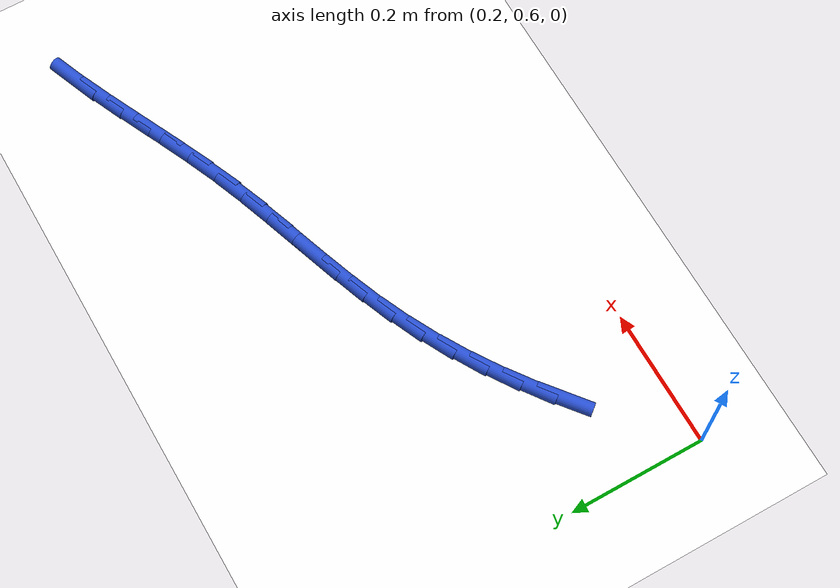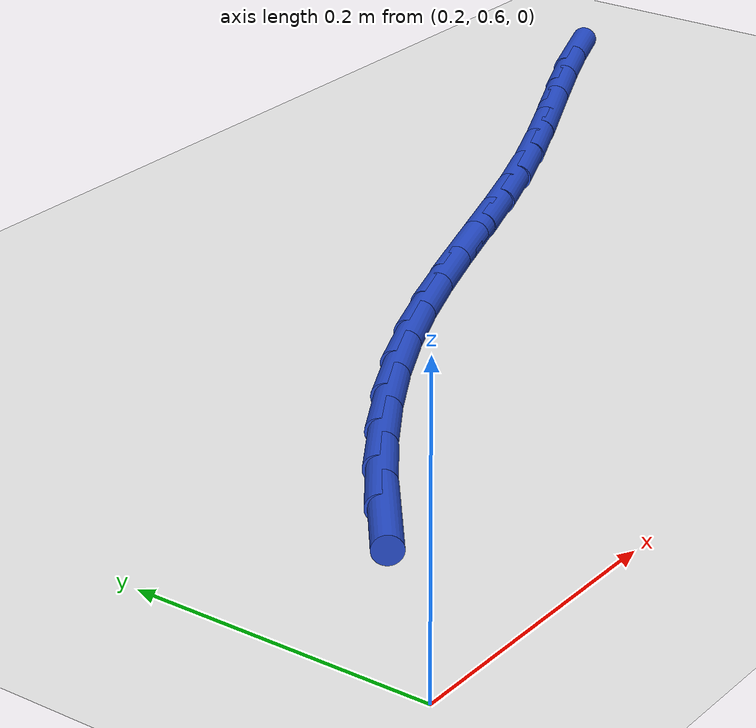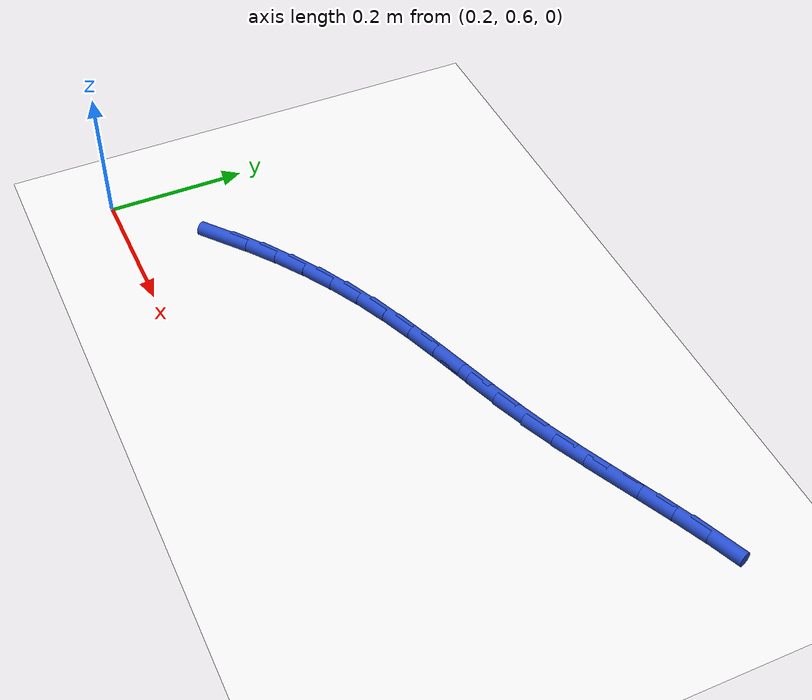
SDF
<sdf version="1.6">
 <world name="default">
  <model name="ground_plane">
   <static>1</static>
   <link name="link">
    <collision name="collision">
     <geometry><plane><normal>0 0 1</normal><size>100 100</size></plane></geometry>
     <surface><friction><ode><mu>100</mu><mu2>50</mu2></ode></friction></surface>
    </collision>
    <visual name="visual">
     <cast_shadows>0</cast_shadows>
     <geometry><plane><normal>0 0 1</normal><size>100 100</size></plane></geometry>
     <material>
      <script><uri>file://media/materials/scripts/gazebo.material</uri><name>Gazebo/WhiteGlow</name></script>
     </material>
    </visual>
   </link>
  </model>
  <model name="line">
   <link name="link_17">
    <pose>0.33464832039787706 0.7286169384509293 0.01 0 1.57 0.6748906751996312</pose>
    <collision name="collision">
     <geometry><cylinder><radius>0.01</radius><length>0.08</length></cylinder></geometry>
    </collision>
    <visual name="visual">
     <material>
      <script><name>Gazebo/Blue</name><uri>file://media/materials/scripts/gazebo.material</uri></script>
     </material>
     <geometry><cylinder><radius>0.01</radius><length>0.08</length></cylinder></geometry>
    </visual>
   </link>
   <link name="link_18">
    <pose>0.37295390740043777 0.7592708155795912 0.01 0 1.57 0.6245426824054108</pose>
    <collision name="collision">
     <geometry><cylinder><radius>0.01</radius><length>0.08</length></cylinder></geometry>
    </collision>
    <visual name="visual">
     <material>
      <script><name>Gazebo/Blue</name><uri>file://media/materials/scripts/gazebo.material</uri></script>
     </material>
     <geometry><cylinder><radius>0.01</radius><length>0.08</length></cylinder></geometry>
    </visual>
   </link>
   <link name="link_19">
    <pose>0.4126214153891729 0.7878627309232674 0.01 0 1.57 0.5735935279778767</pose>
    <collision name="collision">
     <geometry><cylinder><radius>0.01</radius><length>0.08</length></cylinder></geometry>
    </collision>
    <visual name="visual">
     <material>
      <script><name>Gazebo/Blue</name><uri>file://media/materials/scripts/gazebo.material</uri></script>
     </material>
     <geometry><cylinder><radius>0.01</radius><length>0.08</length></cylinder></geometry>
    </visual>
   </link>
   <link name="link_20">
    <pose>0.4535173822781913 0.814283577437654 0.01 0 1.57 0.5217602982170383</pose>
    <collision name="collision">
     <geometry><cylinder><radius>0.01</radius><length>0.08</length></cylinder></geometry>
    </collision>
    <visual name="visual">
     <material>
      <script><name>Gazebo/Blue</name><uri>file://media/materials/scripts/gazebo.material</uri></script>
     </material>
     <geometry><cylinder><radius>0.01</radius><length>0.08</length></cylinder></geometry>
    </visual>
   </link>
   <link name="link_21">
    <pose>0.49550834598160154 0.8384242480784464 0.01 0 1.57 0.4687589846407496</pose>
    <collision name="collision">
     <geometry><cylinder><radius>0.01</radius><length>0.08</length></cylinder></geometry>
    </collision>
    <visual name="visual">
     <material>
      <script><name>Gazebo/Blue</name><uri>file://media/materials/scripts/gazebo.material</uri></script>
     </material>
     <geometry><cylinder><radius>0.01</radius><length>0.08</length></cylinder></geometry>
    </visual>
   </link>
   <link name="link_22">
    <pose>0.5384608444135123 0.8601756358013407 0.01 0 1.57 0.4153699854165763</pose>
    <collision name="collision">
     <geometry><cylinder><radius>0.01</radius><length>0.08</length></cylinder></geometry>
    </collision>
    <visual name="visual">
     <material>
      <script><name>Gazebo/Blue</name><uri>file://media/materials/scripts/gazebo.material</uri></script>
     </material>
     <geometry><cylinder><radius>0.01</radius><length>0.08</length></cylinder></geometry>
    </visual>
   </link>
   <link name="link_23">
    <pose>0.5822396941860251 0.8794834482159868 0.01 0 1.57 0.3711278010609873</pose>
    <collision name="collision">
     <geometry><cylinder><radius>0.01</radius><length>0.08</length></cylinder></geometry>
    </collision>
    <visual name="visual">
     <material>
      <script><name>Gazebo/Blue</name><uri>file://media/materials/scripts/gazebo.material</uri></script>
     </material>
     <geometry><cylinder><radius>0.01</radius><length>0.08</length></cylinder></geometry>
    </visual>
   </link>
   <link name="link_24">
    <pose>0.6266943225736682 0.8967834645233083 0.01 0 1.57 0.34153641652506805</pose>
    <collision name="collision">
     <geometry><cylinder><radius>0.01</radius><length>0.08</length></cylinder></geometry>
    </collision>
    <visual name="visual">
     <material>
      <script><name>Gazebo/Blue</name><uri>file://media/materials/scripts/gazebo.material</uri></script>
     </material>
     <geometry><cylinder><radius>0.01</radius><length>0.08</length></cylinder></geometry>
    </visual>
   </link>
   <link name="link_25">
    <pose>0.6716660568045066 0.9127694089228885 0.01 0 1.57 0.32686163205670815</pose>
    <collision name="collision">
     <geometry><cylinder><radius>0.01</radius><length>0.08</length></cylinder></geometry>
    </collision>
    <visual name="visual">
     <material>
      <script><name>Gazebo/Blue</name><uri>file://media/materials/scripts/gazebo.material</uri></script>
     </material>
     <geometry><cylinder><radius>0.01</radius><length>0.08</length></cylinder></geometry>
    </visual>
   </link>
   <link name="link_26">
    <pose>0.7169961517241952 0.9281373106234055 0.01 0 1.57 0.3270647680079634</pose>
    <collision name="collision">
     <geometry><cylinder><radius>0.01</radius><length>0.08</length></cylinder></geometry>
    </collision>
    <visual name="visual">
     <material>
      <script><name>Gazebo/Blue</name><uri>file://media/materials/scripts/gazebo.material</uri></script>
     </material>
     <geometry><cylinder><radius>0.01</radius><length>0.08</length></cylinder></geometry>
    </visual>
   </link>
   <link name="link_27">
    <pose>0.7625258621783879 0.9435831988335366 0.01 0 1.57 0.34194723040738334</pose>
    <collision name="collision">
     <geometry><cylinder><radius>0.01</radius><length>0.08</length></cylinder></geometry>
    </collision>
    <visual name="visual">
     <material>
      <script><name>Gazebo/Blue</name><uri>file://media/materials/scripts/gazebo.material</uri></script>
     </material>
     <geometry><cylinder><radius>0.01</radius><length>0.08</length></cylinder></geometry>
    </visual>
   </link>
   <link name="link_28">
    <pose>0.8080964430127398 0.95980310276196 0.01 0 1.57 0.3711517643739013</pose>
    <collision name="collision">
     <geometry><cylinder><radius>0.01</radius><length>0.08</length></cylinder></geometry>
    </collision>
    <visual name="visual">
     <material>
      <script><name>Gazebo/Blue</name><uri>file://media/materials/scripts/gazebo.material</uri></script>
     </material>
     <geometry><cylinder><radius>0.01</radius><length>0.08</length></cylinder></geometry>
    </visual>
   </link>
   <link name="link_29">
    <pose>0.8535491869157628 0.9774928010612357 0.01 0 1.57 0.4076074209221799</pose>
    <collision name="collision">
     <geometry><cylinder><radius>0.01</radius><length>0.08</length></cylinder></geometry>
    </collision>
    <visual name="visual">
     <material>
      <script><name>Gazebo/Blue</name><uri>file://media/materials/scripts/gazebo.material</uri></script>
     </material>
     <geometry><cylinder><radius>0.01</radius><length>0.08</length></cylinder></geometry>
    </visual>
   </link>
   <link name="link_30">
    <pose>0.898774822295596 0.997020760370592 0.01 0 1.57 0.4320042545859119</pose>
    <collision name="collision">
     <geometry><cylinder><radius>0.01</radius><length>0.08</length></cylinder></geometry>
    </collision>
    <visual name="visual">
     <material>
      <script><name>Gazebo/Blue</name><uri>file://media/materials/scripts/gazebo.material</uri></script>
     </material>
     <geometry><cylinder><radius>0.01</radius><length>0.08</length></cylinder></geometry>
    </visual>
   </link>
   <link name="link_31">
    <pose>0.9438107219773708 1.0177845202398654 0.01 0 1.57 0.4413637397500417</pose>
    <collision name="collision">
     <geometry><cylinder><radius>0.01</radius><length>0.08</length></cylinder></geometry>
    </collision>
    <visual name="visual">
     <material>
      <script><name>Gazebo/Blue</name><uri>file://media/materials/scripts/gazebo.material</uri></script>
     </material>
     <geometry><cylinder><radius>0.01</radius><length>0.08</length></cylinder></geometry>
    </visual>
   </link>
   <link name="link_32">
    <pose>0.9887213235131233 1.0390024256947603 0.01 0 1.57 0.43590400869756685</pose>
    <collision name="collision">
     <geometry><cylinder><radius>0.01</radius><length>0.08</length></cylinder></geometry>
    </collision>
    <visual name="visual">
     <material>
      <script><name>Gazebo/Blue</name><uri>file://media/materials/scripts/gazebo.material</uri></script>
     </material>
     <geometry><cylinder><radius>0.01</radius><length>0.08</length></cylinder></geometry>
    </visual>
   </link>
   <link name="link_33">
    <pose>1.0335710644548894 1.0598928217609822 0.01 0 1.57 0.4153615110476163</pose>
    <collision name="collision">
     <geometry><cylinder><radius>0.01</radius><length>0.08</length></cylinder></geometry>
    </collision>
    <visual name="visual">
     <material>
      <script><name>Gazebo/Blue</name><uri>file://media/materials/scripts/gazebo.material</uri></script>
     </material>
     <geometry><cylinder><radius>0.01</radius><length>0.08</length></cylinder></geometry>
    </visual>
   </link>
   <link name="link_34">
    <pose>1.0784243823547055 1.0796740534642344 0.01 0 1.57 0.3790062946709613</pose>
    <collision name="collision">
     <geometry><cylinder><radius>0.01</radius><length>0.08</length></cylinder></geometry>
    </collision>
    <visual name="visual">
     <material>
      <script><name>Gazebo/Blue</name><uri>file://media/materials/scripts/gazebo.material</uri></script>
     </material>
     <geometry><cylinder><radius>0.01</radius><length>0.08</length></cylinder></geometry>
    </visual>
   </link>
  </model>
 </world>
</sdf>
